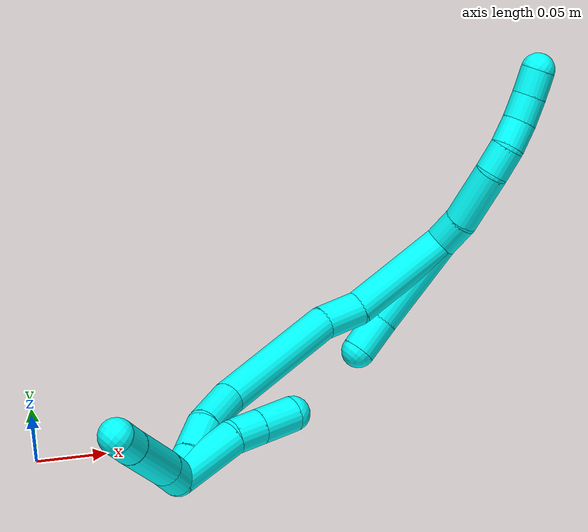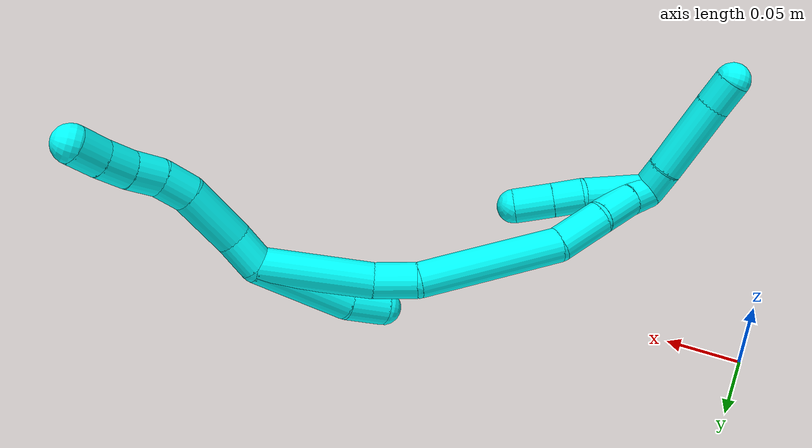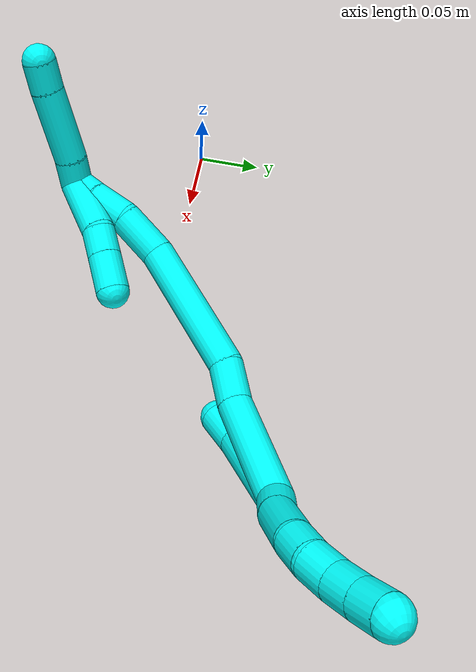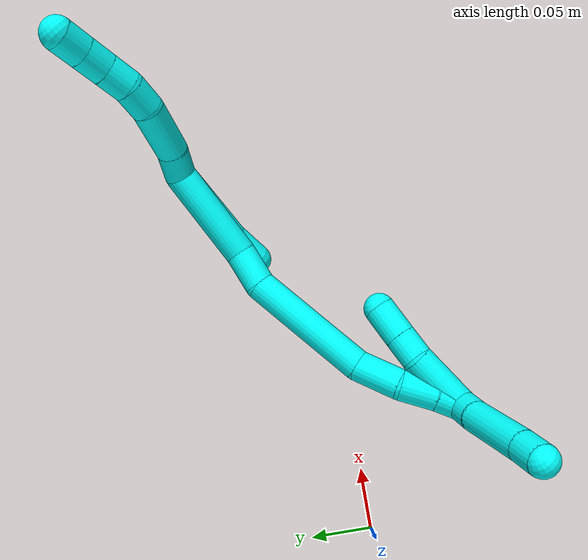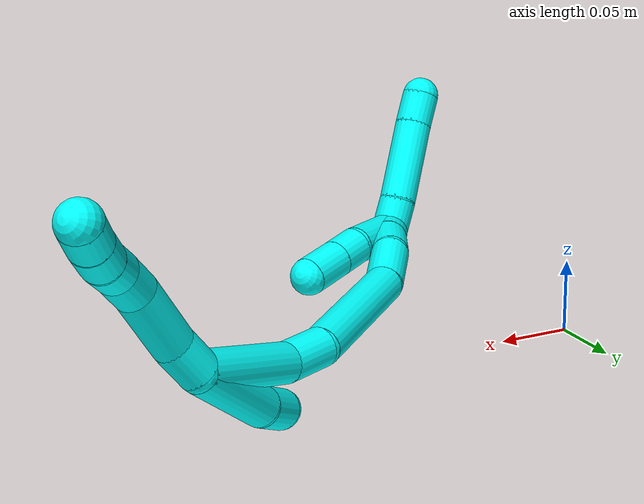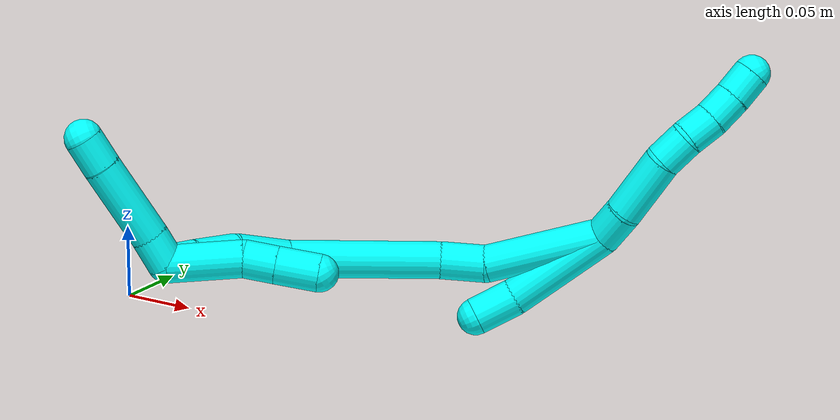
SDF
<sdf version="1.7">
 <world name="default">
  <model name="3">
   <static>0</static>
   <link name="3">
    <collision name="collision-cylinder-e_1_2_8">
     <pose>-0.00504 -0.004285 0.010266 0.395394 -0.425444 -0.086477</pose>
     <geometry><cylinder><radius>0.0125</radius><length>0.024425</length></cylinder></geometry>
     <surface>
      <friction><ode><mu>1.16</mu><mu2>1.16</mu2><slip1>0</slip1><slip2>0</slip2></ode></friction>
      <contact><ode><kp>1e+06</kp><kd>1</kd><max_vel>0</max_vel><min_depth>0.001</min_depth></ode></contact>
     </surface>
    </collision>
    <visual name="visual-cylinder-e_1_2_8">
     <pose>-0.00504 -0.004285 0.010266 0.395394 -0.425444 -0.086477</pose>
     <geometry><cylinder><radius>0.0125</radius><length>0.024425</length></cylinder></geometry>
     <material><ambient>0.003922 1 0.996078 1</ambient></material>
    </visual>
    <collision name="collision-cylinder-e_2_8_9">
     <pose>-0.020196 -0.012375 0.039345 0.199619 -0.484984 -0.049532</pose>
     <geometry><cylinder><radius>0.0125</radius><length>0.043393</length></cylinder></geometry>
     <surface>
      <friction><ode><mu>1.16</mu><mu2>1.16</mu2><slip1>0</slip1><slip2>0</slip2></ode></friction>
      <contact><ode><kp>1e+06</kp><kd>1</kd><max_vel>0</max_vel><min_depth>0.001</min_depth></ode></contact>
     </surface>
    </collision>
    <visual name="visual-cylinder-e_2_8_9">
     <pose>-0.020196 -0.012375 0.039345 0.199619 -0.484984 -0.049532</pose>
     <geometry><cylinder><radius>0.0125</radius><length>0.043393</length></cylinder></geometry>
     <material><ambient>0.003922 1 0.996078 1</ambient></material>
    </visual>
    <collision name="collision-cylinder-e_3_9_10">
     <pose>-0.033535 -0.016273 0.068515 0.008822 -0.301839 -0.001342</pose>
     <geometry><cylinder><radius>0.0125</radius><length>0.021696</length></cylinder></geometry>
     <surface>
      <friction><ode><mu>1.16</mu><mu2>1.16</mu2><slip1>0</slip1><slip2>0</slip2></ode></friction>
      <contact><ode><kp>1e+06</kp><kd>1</kd><max_vel>0</max_vel><min_depth>0.001</min_depth></ode></contact>
     </surface>
    </collision>
    <visual name="visual-cylinder-e_3_9_10">
     <pose>-0.033535 -0.016273 0.068515 0.008822 -0.301839 -0.001342</pose>
     <geometry><cylinder><radius>0.0125</radius><length>0.021696</length></cylinder></geometry>
     <material><ambient>0.003922 1 0.996078 1</ambient></material>
    </visual>
    <collision name="collision-cylinder-e_4_10_11">
     <pose>-0.038433 -0.014161 0.088721 -0.220135 -0.164269 0.018194</pose>
     <geometry><cylinder><radius>0.0125</radius><length>0.02046</length></cylinder></geometry>
     <surface>
      <friction><ode><mu>1.16</mu><mu2>1.16</mu2><slip1>0</slip1><slip2>0</slip2></ode></friction>
      <contact><ode><kp>1e+06</kp><kd>1</kd><max_vel>0</max_vel><min_depth>0.001</min_depth></ode></contact>
     </surface>
    </collision>
    <visual name="visual-cylinder-e_4_10_11">
     <pose>-0.038433 -0.014161 0.088721 -0.220135 -0.164269 0.018194</pose>
     <geometry><cylinder><radius>0.0125</radius><length>0.02046</length></cylinder></geometry>
     <material><ambient>0.003922 1 0.996078 1</ambient></material>
    </visual>
    <collision name="collision-cylinder-e_5_11_12">
     <pose>-0.043189 -0.009969 0.107882 -0.210338 -0.313081 0.033318</pose>
     <geometry><cylinder><radius>0.0125</radius><length>0.020018</length></cylinder></geometry>
     <surface>
      <friction><ode><mu>1.16</mu><mu2>1.16</mu2><slip1>0</slip1><slip2>0</slip2></ode></friction>
      <contact><ode><kp>1e+06</kp><kd>1</kd><max_vel>0</max_vel><min_depth>0.001</min_depth></ode></contact>
     </surface>
    </collision>
    <visual name="visual-cylinder-e_5_11_12">
     <pose>-0.043189 -0.009969 0.107882 -0.210338 -0.313081 0.033318</pose>
     <geometry><cylinder><radius>0.0125</radius><length>0.020018</length></cylinder></geometry>
     <material><ambient>0.003922 1 0.996078 1</ambient></material>
    </visual>
    <collision name="collision-cylinder-e_6_12_6">
     <pose>-0.050112 -0.006115 0.126242 -0.203333 -0.39402 0.04072</pose>
     <geometry><cylinder><radius>0.0125</radius><length>0.020008</length></cylinder></geometry>
     <surface>
      <friction><ode><mu>1.16</mu><mu2>1.16</mu2><slip1>0</slip1><slip2>0</slip2></ode></friction>
      <contact><ode><kp>1e+06</kp><kd>1</kd><max_vel>0</max_vel><min_depth>0.001</min_depth></ode></contact>
     </surface>
    </collision>
    <visual name="visual-cylinder-e_6_12_6">
     <pose>-0.050112 -0.006115 0.126242 -0.203333 -0.39402 0.04072</pose>
     <geometry><cylinder><radius>0.0125</radius><length>0.020008</length></cylinder></geometry>
     <material><ambient>0.003922 1 0.996078 1</ambient></material>
    </visual>
    <collision name="collision-cylinder-e_1_2_13">
     <pose>0.005429 0.001286 -0.035083 -3.10496 0.153441 -2.67368</pose>
     <geometry><cylinder><radius>0.0125</radius><length>0.071048</length></cylinder></geometry>
     <surface>
      <friction><ode><mu>1.16</mu><mu2>1.16</mu2><slip1>0</slip1><slip2>0</slip2></ode></friction>
      <contact><ode><kp>1e+06</kp><kd>1</kd><max_vel>0</max_vel><min_depth>0.001</min_depth></ode></contact>
     </surface>
    </collision>
    <visual name="visual-cylinder-e_1_2_13">
     <pose>0.005429 0.001286 -0.035083 -3.10496 0.153441 -2.67368</pose>
     <geometry><cylinder><radius>0.0125</radius><length>0.071048</length></cylinder></geometry>
     <material><ambient>0.003922 1 0.996078 1</ambient></material>
    </visual>
    <collision name="collision-cylinder-e_2_13_5">
     <pose>0.010672 0.000893 -0.084543 3.02532 -0.012933 -0.2213</pose>
     <geometry><cylinder><radius>0.0125</radius><length>0.028952</length></cylinder></geometry>
     <surface>
      <friction><ode><mu>1.16</mu><mu2>1.16</mu2><slip1>0</slip1><slip2>0</slip2></ode></friction>
      <contact><ode><kp>1e+06</kp><kd>1</kd><max_vel>0</max_vel><min_depth>0.001</min_depth></ode></contact>
     </surface>
    </collision>
    <visual name="visual-cylinder-e_2_13_5">
     <pose>0.010672 0.000893 -0.084543 3.02532 -0.012933 -0.2213</pose>
     <geometry><cylinder><radius>0.0125</radius><length>0.028952</length></cylinder></geometry>
     <material><ambient>0.003922 1 0.996078 1</ambient></material>
    </visual>
    <collision name="collision-cylinder-e_1_2_14">
     <pose>-0.008597 0.002113 -0.038545 -3.08683 -0.219127 2.65355</pose>
     <geometry><cylinder><radius>0.0125</radius><length>0.079097</length></cylinder></geometry>
     <surface>
      <friction><ode><mu>1.16</mu><mu2>1.16</mu2><slip1>0</slip1><slip2>0</slip2></ode></friction>
      <contact><ode><kp>1e+06</kp><kd>1</kd><max_vel>0</max_vel><min_depth>0.001</min_depth></ode></contact>
     </surface>
    </collision>
    <visual name="visual-cylinder-e_1_2_14">
     <pose>-0.008597 0.002113 -0.038545 -3.08683 -0.219127 2.65355</pose>
     <geometry><cylinder><radius>0.0125</radius><length>0.079097</length></cylinder></geometry>
     <material><ambient>0.003922 1 0.996078 1</ambient></material>
    </visual>
    <collision name="collision-cylinder-e_2_14_15">
     <pose>-0.024793 0.006344 -0.09034 -2.98311 -0.51528 2.55617</pose>
     <geometry><cylinder><radius>0.0125</radius><length>0.030843</length></cylinder></geometry>
     <surface>
      <friction><ode><mu>1.16</mu><mu2>1.16</mu2><slip1>0</slip1><slip2>0</slip2></ode></friction>
      <contact><ode><kp>1e+06</kp><kd>1</kd><max_vel>0</max_vel><min_depth>0.001</min_depth></ode></contact>
     </surface>
    </collision>
    <visual name="visual-cylinder-e_2_14_15">
     <pose>-0.024793 0.006344 -0.09034 -2.98311 -0.51528 2.55617</pose>
     <geometry><cylinder><radius>0.0125</radius><length>0.030843</length></cylinder></geometry>
     <material><ambient>0.003922 1 0.996078 1</ambient></material>
    </visual>
    <collision name="collision-cylinder-e_3_15_16">
     <pose>-0.057328 -0.001149 -0.14752 2.92621 -0.50631 -2.34994</pose>
     <geometry><cylinder><radius>0.0125</radius><length>0.102838</length></cylinder></geometry>
     <surface>
      <friction><ode><mu>1.16</mu><mu2>1.16</mu2><slip1>0</slip1><slip2>0</slip2></ode></friction>
      <contact><ode><kp>1e+06</kp><kd>1</kd><max_vel>0</max_vel><min_depth>0.001</min_depth></ode></contact>
     </surface>
    </collision>
    <visual name="visual-cylinder-e_3_15_16">
     <pose>-0.057328 -0.001149 -0.14752 2.92621 -0.50631 -2.34994</pose>
     <geometry><cylinder><radius>0.0125</radius><length>0.102838</length></cylinder></geometry>
     <material><ambient>0.003922 1 0.996078 1</ambient></material>
    </visual>
    <collision name="collision-cylinder-e_4_16_17">
     <pose>-0.092999 -0.018898 -0.204244 2.57505 -0.616019 -1.65948</pose>
     <geometry><cylinder><radius>0.0125</radius><length>0.037158</length></cylinder></geometry>
     <surface>
      <friction><ode><mu>1.16</mu><mu2>1.16</mu2><slip1>0</slip1><slip2>0</slip2></ode></friction>
      <contact><ode><kp>1e+06</kp><kd>1</kd><max_vel>0</max_vel><min_depth>0.001</min_depth></ode></contact>
     </surface>
    </collision>
    <visual name="visual-cylinder-e_4_16_17">
     <pose>-0.092999 -0.018898 -0.204244 2.57505 -0.616019 -1.65948</pose>
     <geometry><cylinder><radius>0.0125</radius><length>0.037158</length></cylinder></geometry>
     <material><ambient>0.003922 1 0.996078 1</ambient></material>
    </visual>
    <collision name="collision-cylinder-e_5_17_18">
     <pose>-0.109031 -0.035376 -0.228187 2.49939 -0.363603 -1.00981</pose>
     <geometry><cylinder><radius>0.0125</radius><length>0.029794</length></cylinder></geometry>
     <surface>
      <friction><ode><mu>1.16</mu><mu2>1.16</mu2><slip1>0</slip1><slip2>0</slip2></ode></friction>
      <contact><ode><kp>1e+06</kp><kd>1</kd><max_vel>0</max_vel><min_depth>0.001</min_depth></ode></contact>
     </surface>
    </collision>
    <visual name="visual-cylinder-e_5_17_18">
     <pose>-0.109031 -0.035376 -0.228187 2.49939 -0.363603 -1.00981</pose>
     <geometry><cylinder><radius>0.0125</radius><length>0.029794</length></cylinder></geometry>
     <material><ambient>0.003922 1 0.996078 1</ambient></material>
    </visual>
    <collision name="collision-cylinder-e_6_18_1">
     <pose>-0.11757 -0.048579 -0.247618 2.61057 -0.325391 -1.08617</pose>
     <geometry><cylinder><radius>0.0125</radius><length>0.020271</length></cylinder></geometry>
     <surface>
      <friction><ode><mu>1.16</mu><mu2>1.16</mu2><slip1>0</slip1><slip2>0</slip2></ode></friction>
      <contact><ode><kp>1e+06</kp><kd>1</kd><max_vel>0</max_vel><min_depth>0.001</min_depth></ode></contact>
     </surface>
    </collision>
    <visual name="visual-cylinder-e_6_18_1">
     <pose>-0.11757 -0.048579 -0.247618 2.61057 -0.325391 -1.08617</pose>
     <geometry><cylinder><radius>0.0125</radius><length>0.020271</length></cylinder></geometry>
     <material><ambient>0.003922 1 0.996078 1</ambient></material>
    </visual>
    <collision name="collision-cylinder-e_1_1_19">
     <pose>-0.110921 -0.051861 -0.233089 -0.069213 0.408202 -0.014331</pose>
     <geometry><cylinder><radius>0.0125</radius><length>0.049822</length></cylinder></geometry>
     <surface>
      <friction><ode><mu>1.16</mu><mu2>1.16</mu2><slip1>0</slip1><slip2>0</slip2></ode></friction>
      <contact><ode><kp>1e+06</kp><kd>1</kd><max_vel>0</max_vel><min_depth>0.001</min_depth></ode></contact>
     </surface>
    </collision>
    <visual name="visual-cylinder-e_1_1_19">
     <pose>-0.110921 -0.051861 -0.233089 -0.069213 0.408202 -0.014331</pose>
     <geometry><cylinder><radius>0.0125</radius><length>0.049822</length></cylinder></geometry>
     <material><ambient>0.003922 1 0.996078 1</ambient></material>
    </visual>
    <collision name="collision-cylinder-e_2_19_20">
     <pose>-0.09444 -0.05084 -0.201668 0.064928 0.65231 0.021968</pose>
     <geometry><cylinder><radius>0.0125</radius><length>0.02172</length></cylinder></geometry>
     <surface>
      <friction><ode><mu>1.16</mu><mu2>1.16</mu2><slip1>0</slip1><slip2>0</slip2></ode></friction>
      <contact><ode><kp>1e+06</kp><kd>1</kd><max_vel>0</max_vel><min_depth>0.001</min_depth></ode></contact>
     </surface>
    </collision>
    <visual name="visual-cylinder-e_2_19_20">
     <pose>-0.09444 -0.05084 -0.201668 0.064928 0.65231 0.021968</pose>
     <geometry><cylinder><radius>0.0125</radius><length>0.02172</length></cylinder></geometry>
     <material><ambient>0.003922 1 0.996078 1</ambient></material>
    </visual>
    <collision name="collision-cylinder-e_3_20_4">
     <pose>-0.079334 -0.05227 -0.181688 0.076436 0.641395 0.0254</pose>
     <geometry><cylinder><radius>0.0125</radius><length>0.028457</length></cylinder></geometry>
     <surface>
      <friction><ode><mu>1.16</mu><mu2>1.16</mu2><slip1>0</slip1><slip2>0</slip2></ode></friction>
      <contact><ode><kp>1e+06</kp><kd>1</kd><max_vel>0</max_vel><min_depth>0.001</min_depth></ode></contact>
     </surface>
    </collision>
    <visual name="visual-cylinder-e_3_20_4">
     <pose>-0.079334 -0.05227 -0.181688 0.076436 0.641395 0.0254</pose>
     <geometry><cylinder><radius>0.0125</radius><length>0.028457</length></cylinder></geometry>
     <material><ambient>0.003922 1 0.996078 1</ambient></material>
    </visual>
    <collision name="collision-cylinder-e_1_1_21">
     <pose>-0.131669 -0.054568 -0.25632 1.92844 -1.46056 -1.82313</pose>
     <geometry><cylinder><radius>0.0125</radius><length>0.021851</length></cylinder></geometry>
     <surface>
      <friction><ode><mu>1.16</mu><mu2>1.16</mu2><slip1>0</slip1><slip2>0</slip2></ode></friction>
      <contact><ode><kp>1e+06</kp><kd>1</kd><max_vel>0</max_vel><min_depth>0.001</min_depth></ode></contact>
     </surface>
    </collision>
    <visual name="visual-cylinder-e_1_1_21">
     <pose>-0.131669 -0.054568 -0.25632 1.92844 -1.46056 -1.82313</pose>
     <geometry><cylinder><radius>0.0125</radius><length>0.021851</length></cylinder></geometry>
     <material><ambient>0.003922 1 0.996078 1</ambient></material>
    </visual>
    <collision name="collision-cylinder-e_2_21_22">
     <pose>-0.169999 -0.060941 -0.258836 1.95083 -1.36796 -1.75503</pose>
     <geometry><cylinder><radius>0.0125</radius><length>0.056093</length></cylinder></geometry>
     <surface>
      <friction><ode><mu>1.16</mu><mu2>1.16</mu2><slip1>0</slip1><slip2>0</slip2></ode></friction>
      <contact><ode><kp>1e+06</kp><kd>1</kd><max_vel>0</max_vel><min_depth>0.001</min_depth></ode></contact>
     </surface>
    </collision>
    <visual name="visual-cylinder-e_2_21_22">
     <pose>-0.169999 -0.060941 -0.258836 1.95083 -1.36796 -1.75503</pose>
     <geometry><cylinder><radius>0.0125</radius><length>0.056093</length></cylinder></geometry>
     <material><ambient>0.003922 1 0.996078 1</ambient></material>
    </visual>
    <collision name="collision-cylinder-e_3_22_3">
     <pose>-0.208382 -0.067662 -0.261557 1.97138 -1.4251 -1.83325</pose>
     <geometry><cylinder><radius>0.0125</radius><length>0.022056</length></cylinder></geometry>
     <surface>
      <friction><ode><mu>1.16</mu><mu2>1.16</mu2><slip1>0</slip1><slip2>0</slip2></ode></friction>
      <contact><ode><kp>1e+06</kp><kd>1</kd><max_vel>0</max_vel><min_depth>0.001</min_depth></ode></contact>
     </surface>
    </collision>
    <visual name="visual-cylinder-e_3_22_3">
     <pose>-0.208382 -0.067662 -0.261557 1.97138 -1.4251 -1.83325</pose>
     <geometry><cylinder><radius>0.0125</radius><length>0.022056</length></cylinder></geometry>
     <material><ambient>0.003922 1 0.996078 1</ambient></material>
    </visual>
    <collision name="collision-sphere-3">
     <pose>-0.219293 -0.069137 -0.262181 0 -0 0</pose>
     <geometry><sphere><radius>0.0125</radius></sphere></geometry>
     <surface>
      <friction><ode><mu>1.16</mu><mu2>1.16</mu2><slip1>0</slip1><slip2>0</slip2></ode></friction>
      <contact><ode><kp>1e+06</kp><kd>1</kd><max_vel>0</max_vel><min_depth>0.001</min_depth></ode></contact>
     </surface>
    </collision>
    <visual name="visual-sphere-3">
     <pose>-0.219293 -0.069137 -0.262181 0 -0 0</pose>
     <geometry><sphere><radius>0.0125</radius></sphere></geometry>
     <material><ambient>0.003922 1 0.996078 1</ambient></material>
    </visual>
    <collision name="collision-sphere-22">
     <pose>-0.197471 -0.066188 -0.260932 0 -0 0</pose>
     <geometry><sphere><radius>0.0125</radius></sphere></geometry>
     <surface>
      <friction><ode><mu>1.16</mu><mu2>1.16</mu2><slip1>0</slip1><slip2>0</slip2></ode></friction>
      <contact><ode><kp>1e+06</kp><kd>1</kd><max_vel>0</max_vel><min_depth>0.001</min_depth></ode></contact>
     </surface>
    </collision>
    <visual name="visual-sphere-22">
     <pose>-0.197471 -0.066188 -0.260932 0 -0 0</pose>
     <geometry><sphere><radius>0.0125</radius></sphere></geometry>
     <material><ambient>0.003922 1 0.996078 1</ambient></material>
    </visual>
    <collision name="collision-sphere-21">
     <pose>-0.142528 -0.055694 -0.256741 0 -0 0</pose>
     <geometry><sphere><radius>0.0125</radius></sphere></geometry>
     <surface>
      <friction><ode><mu>1.16</mu><mu2>1.16</mu2><slip1>0</slip1><slip2>0</slip2></ode></friction>
      <contact><ode><kp>1e+06</kp><kd>1</kd><max_vel>0</max_vel><min_depth>0.001</min_depth></ode></contact>
     </surface>
    </collision>
    <visual name="visual-sphere-21">
     <pose>-0.142528 -0.055694 -0.256741 0 -0 0</pose>
     <geometry><sphere><radius>0.0125</radius></sphere></geometry>
     <material><ambient>0.003922 1 0.996078 1</ambient></material>
    </visual>
    <collision name="collision-sphere-4">
     <pose>-0.070821 -0.053141 -0.17032 0 -0 0</pose>
     <geometry><sphere><radius>0.0125</radius></sphere></geometry>
     <surface>
      <friction><ode><mu>1.16</mu><mu2>1.16</mu2><slip1>0</slip1><slip2>0</slip2></ode></friction>
      <contact><ode><kp>1e+06</kp><kd>1</kd><max_vel>0</max_vel><min_depth>0.001</min_depth></ode></contact>
     </surface>
    </collision>
    <visual name="visual-sphere-4">
     <pose>-0.070821 -0.053141 -0.17032 0 -0 0</pose>
     <geometry><sphere><radius>0.0125</radius></sphere></geometry>
     <material><ambient>0.003922 1 0.996078 1</ambient></material>
    </visual>
    <collision name="collision-sphere-20">
     <pose>-0.087847 -0.0514 -0.193055 0 -0 0</pose>
     <geometry><sphere><radius>0.0125</radius></sphere></geometry>
     <surface>
      <friction><ode><mu>1.16</mu><mu2>1.16</mu2><slip1>0</slip1><slip2>0</slip2></ode></friction>
      <contact><ode><kp>1e+06</kp><kd>1</kd><max_vel>0</max_vel><min_depth>0.001</min_depth></ode></contact>
     </surface>
    </collision>
    <visual name="visual-sphere-20">
     <pose>-0.087847 -0.0514 -0.193055 0 -0 0</pose>
     <geometry><sphere><radius>0.0125</radius></sphere></geometry>
     <material><ambient>0.003922 1 0.996078 1</ambient></material>
    </visual>
    <collision name="collision-sphere-12">
     <pose>-0.046271 -0.00798 0.117195 0 -0 0</pose>
     <geometry><sphere><radius>0.0125</radius></sphere></geometry>
     <surface>
      <friction><ode><mu>1.16</mu><mu2>1.16</mu2><slip1>0</slip1><slip2>0</slip2></ode></friction>
      <contact><ode><kp>1e+06</kp><kd>1</kd><max_vel>0</max_vel><min_depth>0.001</min_depth></ode></contact>
     </surface>
    </collision>
    <visual name="visual-sphere-12">
     <pose>-0.046271 -0.00798 0.117195 0 -0 0</pose>
     <geometry><sphere><radius>0.0125</radius></sphere></geometry>
     <material><ambient>0.003922 1 0.996078 1</ambient></material>
    </visual>
    <collision name="collision-sphere-11">
     <pose>-0.040106 -0.011957 0.09857 0 -0 0</pose>
     <geometry><sphere><radius>0.0125</radius></sphere></geometry>
     <surface>
      <friction><ode><mu>1.16</mu><mu2>1.16</mu2><slip1>0</slip1><slip2>0</slip2></ode></friction>
      <contact><ode><kp>1e+06</kp><kd>1</kd><max_vel>0</max_vel><min_depth>0.001</min_depth></ode></contact>
     </surface>
    </collision>
    <visual name="visual-sphere-11">
     <pose>-0.040106 -0.011957 0.09857 0 -0 0</pose>
     <geometry><sphere><radius>0.0125</radius></sphere></geometry>
     <material><ambient>0.003922 1 0.996078 1</ambient></material>
    </visual>
    <collision name="collision-sphere-10">
     <pose>-0.03676 -0.016364 0.078872 0 -0 0</pose>
     <geometry><sphere><radius>0.0125</radius></sphere></geometry>
     <surface>
      <friction><ode><mu>1.16</mu><mu2>1.16</mu2><slip1>0</slip1><slip2>0</slip2></ode></friction>
      <contact><ode><kp>1e+06</kp><kd>1</kd><max_vel>0</max_vel><min_depth>0.001</min_depth></ode></contact>
     </surface>
    </collision>
    <visual name="visual-sphere-10">
     <pose>-0.03676 -0.016364 0.078872 0 -0 0</pose>
     <geometry><sphere><radius>0.0125</radius></sphere></geometry>
     <material><ambient>0.003922 1 0.996078 1</ambient></material>
    </visual>
    <collision name="collision-sphere-9">
     <pose>-0.03031 -0.016182 0.058158 0 -0 0</pose>
     <geometry><sphere><radius>0.0125</radius></sphere></geometry>
     <surface>
      <friction><ode><mu>1.16</mu><mu2>1.16</mu2><slip1>0</slip1><slip2>0</slip2></ode></friction>
      <contact><ode><kp>1e+06</kp><kd>1</kd><max_vel>0</max_vel><min_depth>0.001</min_depth></ode></contact>
     </surface>
    </collision>
    <visual name="visual-sphere-9">
     <pose>-0.03031 -0.016182 0.058158 0 -0 0</pose>
     <geometry><sphere><radius>0.0125</radius></sphere></geometry>
     <material><ambient>0.003922 1 0.996078 1</ambient></material>
    </visual>
    <collision name="collision-sphere-2">
     <geometry><sphere><radius>0.0125</radius></sphere></geometry>
     <surface>
      <friction><ode><mu>1.16</mu><mu2>1.16</mu2><slip1>0</slip1><slip2>0</slip2></ode></friction>
      <contact><ode><kp>1e+06</kp><kd>1</kd><max_vel>0</max_vel><min_depth>0.001</min_depth></ode></contact>
     </surface>
    </collision>
    <visual name="visual-sphere-2">
     <geometry><sphere><radius>0.0125</radius></sphere></geometry>
     <material><ambient>0.003922 1 0.996078 1</ambient></material>
    </visual>
    <collision name="collision-sphere-19">
     <pose>-0.101032 -0.05028 -0.21028 0 -0 0</pose>
     <geometry><sphere><radius>0.0125</radius></sphere></geometry>
     <surface>
      <friction><ode><mu>1.16</mu><mu2>1.16</mu2><slip1>0</slip1><slip2>0</slip2></ode></friction>
      <contact><ode><kp>1e+06</kp><kd>1</kd><max_vel>0</max_vel><min_depth>0.001</min_depth></ode></contact>
     </surface>
    </collision>
    <visual name="visual-sphere-19">
     <pose>-0.101032 -0.05028 -0.21028 0 -0 0</pose>
     <geometry><sphere><radius>0.0125</radius></sphere></geometry>
     <material><ambient>0.003922 1 0.996078 1</ambient></material>
    </visual>
    <collision name="collision-sphere-8">
     <pose>-0.010081 -0.008569 0.020531 0 -0 0</pose>
     <geometry><sphere><radius>0.0125</radius></sphere></geometry>
     <surface>
      <friction><ode><mu>1.16</mu><mu2>1.16</mu2><slip1>0</slip1><slip2>0</slip2></ode></friction>
      <contact><ode><kp>1e+06</kp><kd>1</kd><max_vel>0</max_vel><min_depth>0.001</min_depth></ode></contact>
     </surface>
    </collision>
    <visual name="visual-sphere-8">
     <pose>-0.010081 -0.008569 0.020531 0 -0 0</pose>
     <geometry><sphere><radius>0.0125</radius></sphere></geometry>
     <material><ambient>0.003922 1 0.996078 1</ambient></material>
    </visual>
    <collision name="collision-sphere-6">
     <pose>-0.053952 -0.00425 0.135289 0 -0 0</pose>
     <geometry><sphere><radius>0.0125</radius></sphere></geometry>
     <surface>
      <friction><ode><mu>1.16</mu><mu2>1.16</mu2><slip1>0</slip1><slip2>0</slip2></ode></friction>
      <contact><ode><kp>1e+06</kp><kd>1</kd><max_vel>0</max_vel><min_depth>0.001</min_depth></ode></contact>
     </surface>
    </collision>
    <visual name="visual-sphere-6">
     <pose>-0.053952 -0.00425 0.135289 0 -0 0</pose>
     <geometry><sphere><radius>0.0125</radius></sphere></geometry>
     <material><ambient>0.003922 1 0.996078 1</ambient></material>
    </visual>
    <collision name="collision-sphere-13">
     <pose>0.010859 0.002572 -0.070166 0 -0 0</pose>
     <geometry><sphere><radius>0.0125</radius></sphere></geometry>
     <surface>
      <friction><ode><mu>1.16</mu><mu2>1.16</mu2><slip1>0</slip1><slip2>0</slip2></ode></friction>
      <contact><ode><kp>1e+06</kp><kd>1</kd><max_vel>0</max_vel><min_depth>0.001</min_depth></ode></contact>
     </surface>
    </collision>
    <visual name="visual-sphere-13">
     <pose>0.010859 0.002572 -0.070166 0 -0 0</pose>
     <geometry><sphere><radius>0.0125</radius></sphere></geometry>
     <material><ambient>0.003922 1 0.996078 1</ambient></material>
    </visual>
    <collision name="collision-sphere-5">
     <pose>0.010485 -0.000787 -0.09892 0 -0 0</pose>
     <geometry><sphere><radius>0.0125</radius></sphere></geometry>
     <surface>
      <friction><ode><mu>1.16</mu><mu2>1.16</mu2><slip1>0</slip1><slip2>0</slip2></ode></friction>
      <contact><ode><kp>1e+06</kp><kd>1</kd><max_vel>0</max_vel><min_depth>0.001</min_depth></ode></contact>
     </surface>
    </collision>
    <visual name="visual-sphere-5">
     <pose>0.010485 -0.000787 -0.09892 0 -0 0</pose>
     <geometry><sphere><radius>0.0125</radius></sphere></geometry>
     <material><ambient>0.003922 1 0.996078 1</ambient></material>
    </visual>
    <collision name="collision-sphere-14">
     <pose>-0.017194 0.004226 -0.077089 0 -0 0</pose>
     <geometry><sphere><radius>0.0125</radius></sphere></geometry>
     <surface>
      <friction><ode><mu>1.16</mu><mu2>1.16</mu2><slip1>0</slip1><slip2>0</slip2></ode></friction>
      <contact><ode><kp>1e+06</kp><kd>1</kd><max_vel>0</max_vel><min_depth>0.001</min_depth></ode></contact>
     </surface>
    </collision>
    <visual name="visual-sphere-14">
     <pose>-0.017194 0.004226 -0.077089 0 -0 0</pose>
     <geometry><sphere><radius>0.0125</radius></sphere></geometry>
     <material><ambient>0.003922 1 0.996078 1</ambient></material>
    </visual>
    <collision name="collision-sphere-15">
     <pose>-0.032392 0.008462 -0.103591 0 -0 0</pose>
     <geometry><sphere><radius>0.0125</radius></sphere></geometry>
     <surface>
      <friction><ode><mu>1.16</mu><mu2>1.16</mu2><slip1>0</slip1><slip2>0</slip2></ode></friction>
      <contact><ode><kp>1e+06</kp><kd>1</kd><max_vel>0</max_vel><min_depth>0.001</min_depth></ode></contact>
     </surface>
    </collision>
    <visual name="visual-sphere-15">
     <pose>-0.032392 0.008462 -0.103591 0 -0 0</pose>
     <geometry><sphere><radius>0.0125</radius></sphere></geometry>
     <material><ambient>0.003922 1 0.996078 1</ambient></material>
    </visual>
    <collision name="collision-sphere-16">
     <pose>-0.082264 -0.010759 -0.191449 0 -0 0</pose>
     <geometry><sphere><radius>0.0125</radius></sphere></geometry>
     <surface>
      <friction><ode><mu>1.16</mu><mu2>1.16</mu2><slip1>0</slip1><slip2>0</slip2></ode></friction>
      <contact><ode><kp>1e+06</kp><kd>1</kd><max_vel>0</max_vel><min_depth>0.001</min_depth></ode></contact>
     </surface>
    </collision>
    <visual name="visual-sphere-16">
     <pose>-0.082264 -0.010759 -0.191449 0 -0 0</pose>
     <geometry><sphere><radius>0.0125</radius></sphere></geometry>
     <material><ambient>0.003922 1 0.996078 1</ambient></material>
    </visual>
    <collision name="collision-sphere-17">
     <pose>-0.103733 -0.027037 -0.217038 0 -0 0</pose>
     <geometry><sphere><radius>0.0125</radius></sphere></geometry>
     <surface>
      <friction><ode><mu>1.16</mu><mu2>1.16</mu2><slip1>0</slip1><slip2>0</slip2></ode></friction>
      <contact><ode><kp>1e+06</kp><kd>1</kd><max_vel>0</max_vel><min_depth>0.001</min_depth></ode></contact>
     </surface>
    </collision>
    <visual name="visual-sphere-17">
     <pose>-0.103733 -0.027037 -0.217038 0 -0 0</pose>
     <geometry><sphere><radius>0.0125</radius></sphere></geometry>
     <material><ambient>0.003922 1 0.996078 1</ambient></material>
    </visual>
    <collision name="collision-sphere-18">
     <pose>-0.114329 -0.043715 -0.239337 0 -0 0</pose>
     <geometry><sphere><radius>0.0125</radius></sphere></geometry>
     <surface>
      <friction><ode><mu>1.16</mu><mu2>1.16</mu2><slip1>0</slip1><slip2>0</slip2></ode></friction>
      <contact><ode><kp>1e+06</kp><kd>1</kd><max_vel>0</max_vel><min_depth>0.001</min_depth></ode></contact>
     </surface>
    </collision>
    <visual name="visual-sphere-18">
     <pose>-0.114329 -0.043715 -0.239337 0 -0 0</pose>
     <geometry><sphere><radius>0.0125</radius></sphere></geometry>
     <material><ambient>0.003922 1 0.996078 1</ambient></material>
    </visual>
    <collision name="collision-sphere-1">
     <pose>-0.12081 -0.053442 -0.255899 0 -0 0</pose>
     <geometry><sphere><radius>0.0125</radius></sphere></geometry>
     <surface>
      <friction><ode><mu>1.16</mu><mu2>1.16</mu2><slip1>0</slip1><slip2>0</slip2></ode></friction>
      <contact><ode><kp>1e+06</kp><kd>1</kd><max_vel>0</max_vel><min_depth>0.001</min_depth></ode></contact>
     </surface>
    </collision>
    <visual name="visual-sphere-1">
     <pose>-0.12081 -0.053442 -0.255899 0 -0 0</pose>
     <geometry><sphere><radius>0.0125</radius></sphere></geometry>
     <material><ambient>0.003922 1 0.996078 1</ambient></material>
    </visual>
    <inertial>
     <pose>-0.06261 -0.020352 -0.109947 0 -0 0</pose>
     <mass>0.75</mass>
     <inertia>
      <ixx>-0.000175</ixx>
      <ixy>0</ixy>
      <ixz>0</ixz>
      <iyy>0.000124</iyy>
      <iyz>0</iyz>
      <izz>8.9e-05</izz>
     </inertia>
    </inertial>
   </link>
   <pose>0.30957 0.108235 0.066157 -0.252486 1.08277 0.309182</pose>
  </model>
 </world>
</sdf>
